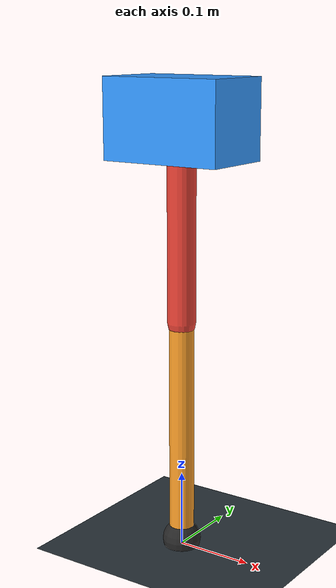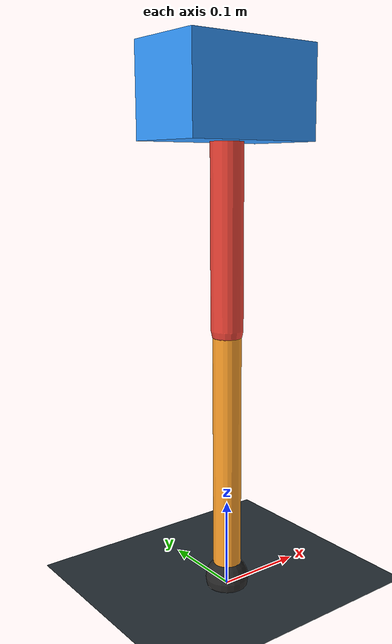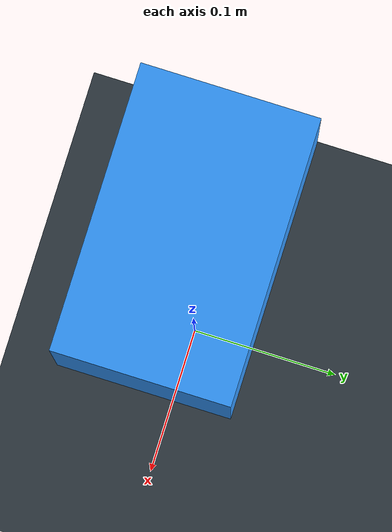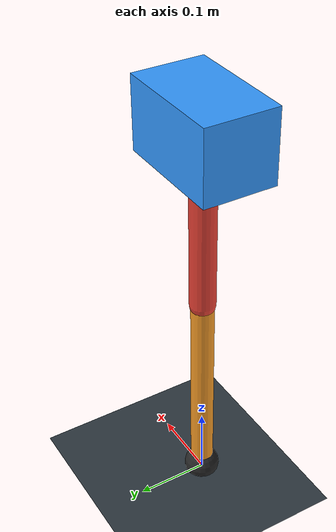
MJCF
<mujoco model="single_axis_two_bar">
  <compiler angle="radian" inertiafromgeom="true"/>
  <option timestep="0.001" integrator="implicitfast" gravity="0 0 -9.81"/>
  <default>
    <joint damping="0.08"/>
    <geom friction="1.2 0.01 0.0001" condim="3"/>
  </default>
  <worldbody>
    <geom name="floor" type="plane" size="5 5 0.1" rgba="0.18 0.22 0.25 1"/>
    <body name="carriage" pos="0 0 0.5557244676456707">
      <joint name="pole_slide" type="slide" axis="0 0 1"/>
      <geom name="payload" type="box" size="0.08 0.05 0.05" mass="2.719019146355113" rgba="0.2 0.6 1 1"/>
      <body name="thigh" pos="0 0 0">
        <joint name="hip" type="hinge" axis="0 1 0"/>
        <geom name="thigh_link" type="capsule" fromto="0 0 0 0 0 -0.2527102444471444" size="0.018" mass="0.18005938843985234" rgba="0.9 0.25 0.2 1"/>
        <body name="shank" pos="0 0 -0.2527102444471444">
          <joint name="knee" type="hinge" axis="0 1 0"/>
          <geom name="shank_link" type="capsule" fromto="0 0 0 0 0 -0.2944283819916914" size="0.016" mass="0.20978411269689323" rgba="0.95 0.6 0.15 1"/>
          <geom name="foot" type="sphere" pos="0 0 -0.2944283819916914" size="0.025" mass="0.03" rgba="0.15 0.15 0.15 1"/>
          <site name="toe" pos="0 0 -0.2944283819916914" size="0.008"/>
        </body>
      </body>
    </body>
  </worldbody>
  <actuator>
    <motor name="hip_motor" joint="hip" ctrlrange="-26.44606764263147 26.44606764263147"/>
    <motor name="knee_motor" joint="knee" ctrlrange="-82.80726108843922 82.80726108843922"/>
  </actuator>
</mujoco>
